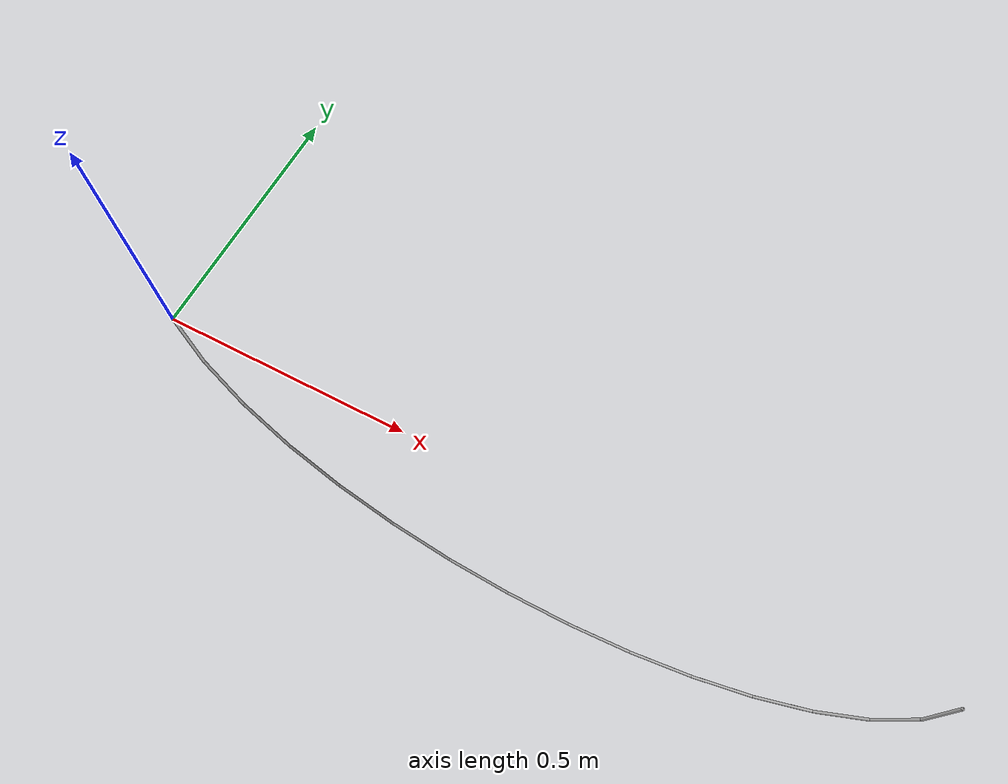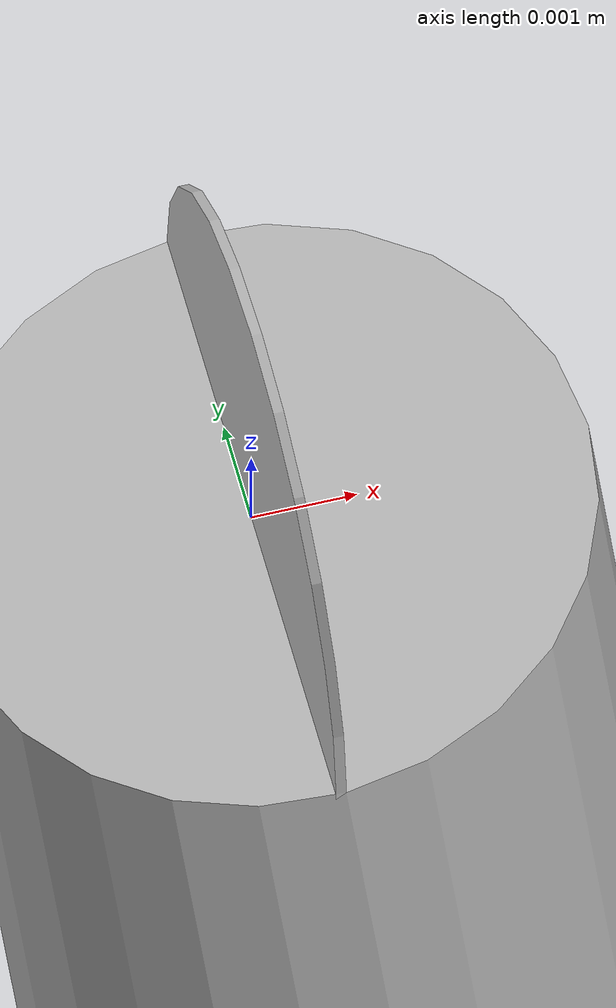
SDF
<sdf version='1.10'>
  <model name='tether_2m'>
    <link name='element_first'>
      <inertial>
        <pose>5.0000000000000002e-05 0 0 0 1.5707963267948966 0</pose>
        <mass>0.0001</mass>
        <inertia>
          <ixx>2.4033333333333338e-10</ixx>
          <ixy>0</ixy>
          <ixz>0</ixz>
          <iyy>2.4033333333333338e-10</iyy>
          <iyz>0</iyz>
          <izz>4.8050000000000005e-10</izz>
        </inertia>
      </inertial>
      <visual name='element_first_visual'>
        <pose>5.0000000000000002e-05 0 0 0 1.5707963267948966 0</pose>
        <geometry>
          <cylinder>
            <length>0.0001</length>
            <radius>0.0030999999999999999</radius>
          </cylinder>
        </geometry>
      </visual>
    </link>
    <joint name='joint_0_to_1' type='universal'>
      <pose relative_to='element_first'>0.0001 0 0 0 1.4660765716752395 0</pose>
      <parent>element_first</parent>
      <child>element_1</child>

      <axis>
        <xyz>0 1 0</xyz>
        <limit>
          <lower>-inf</lower>
          <upper>inf</upper>
        </limit>
        <dynamics>
          <damping>0.002</damping>
          <friction>0.0</friction>
          <spring_reference> 0 </spring_reference>
          <spring_stiffness> 0 </spring_stiffness>
        </dynamics>
    </axis>
      <axis2>
        <xyz>0 0 1</xyz>
        <limit>
          <lower>-inf</lower>
          <upper>inf</upper>
        </limit>
        <dynamics>
          <damping>0.002</damping>
          <friction>0.0</friction>
          <spring_reference> 0 </spring_reference>
          <spring_stiffness> 0 </spring_stiffness>
        </dynamics>
      </axis2>
    </joint>
    <link name='element_1'>
      <pose relative_to='joint_0_to_1'>0 0 0 0 0 0</pose>
      <inertial>
        <pose>0.080699999999999994 0 0 0 1.5707963267948966 0</pose>
        <mass>0.0013333333333333331</mass>
        <inertia>
          <ixx>2.8976433333333328e-06</ixx>
          <ixy>0</ixy>
          <ixz>0</ixz>
          <iyy>2.8976433333333328e-06</iyy>
          <iyz>0</iyz>
          <izz>6.4066666666666656e-09</izz>
        </inertia>
      </inertial>
      <visual name='element_1_visual'>
        <pose>0.080699999999999994 0 0 0 1.5707963267948966 0</pose>
        <geometry>
          <cylinder>
            <length>0.16139999999999999</length>
            <radius>0.0030999999999999999</radius>
          </cylinder>
        </geometry>
      </visual>
    </link>
    <joint name='joint_1_to_2' type='universal'>
      <pose relative_to='element_1'>0.16139999999999999 0 0 0 -0.20943951023931962 0</pose>
      <parent>element_1</parent>
      <child>element_2</child>

      <axis>
        <xyz>0 1 0</xyz>
        <limit>
          <lower>-inf</lower>
          <upper>inf</upper>
        </limit>
        <dynamics>
          <damping>0.002</damping>
          <friction>0</friction>
          <spring_reference>-0.10833078115</spring_reference>
          <spring_stiffness>0</spring_stiffness>
        </dynamics>
    </axis>
      <axis2>
        <xyz>0 0 1</xyz>
        <limit>
          <lower>-inf</lower>
          <upper>inf</upper>
        </limit>
        <dynamics>
          <damping>0.002</damping>
          <friction>0</friction>
          <spring_reference>0</spring_reference>
          <spring_stiffness>0</spring_stiffness>
        </dynamics>
      </axis2>
    </joint>
    <link name='element_2'>
      <pose relative_to='joint_1_to_2'>0 0 0 0 0 0</pose>
      <inertial>
        <pose>0.080699999999999994 0 0 0 1.5707963267948966 0</pose>
        <mass>0.0013333333333333331</mass>
        <inertia>
          <ixx>2.8976433333333328e-06</ixx>
          <ixy>0</ixy>
          <ixz>0</ixz>
          <iyy>2.8976433333333328e-06</iyy>
          <iyz>0</iyz>
          <izz>6.4066666666666656e-09</izz>
        </inertia>
      </inertial>
      <visual name='element_2_visual'>
        <pose>0.080699999999999994 0 0 0 1.5707963267948966 0</pose>
        <geometry>
          <cylinder>
            <length>0.16139999999999999</length>
            <radius>0.0030999999999999999</radius>
          </cylinder>
        </geometry>
      </visual>
    </link>
    <joint name='joint_2_to_3' type='universal'>
      <pose relative_to='element_2'>0.16139999999999999 0 0 0 -0.20943951023931962 0</pose>
      <parent>element_2</parent>
      <child>element_3</child>

      <axis>
        <xyz>0 1 0</xyz>
        <limit>
          <lower>-inf</lower>
          <upper>inf</upper>
        </limit>
        <dynamics>
          <damping>0.002</damping>
          <friction>0.0</friction>
          <spring_reference>-0.10833078115</spring_reference>
          <spring_stiffness>0</spring_stiffness>
        </dynamics>
    </axis>
      <axis2>
        <xyz>0 0 1</xyz>
        <limit>
          <lower>-inf</lower>
          <upper>inf</upper>
        </limit>
        <dynamics>
          <damping>0.002</damping>
          <friction>0.0</friction>
          <spring_reference>0</spring_reference>
          <spring_stiffness>0</spring_stiffness>
        </dynamics>
      </axis2>
    </joint>
    <link name='element_3'>
      <pose relative_to='joint_2_to_3'>0 0 0 0 0 0</pose>
      <inertial>
        <pose>0.080699999999999994 0 0 0 1.5707963267948966 0</pose>
        <mass>0.0013333333333333331</mass>
        <inertia>
          <ixx>2.8976433333333328e-06</ixx>
          <ixy>0</ixy>
          <ixz>0</ixz>
          <iyy>2.8976433333333328e-06</iyy>
          <iyz>0</iyz>
          <izz>6.4066666666666656e-09</izz>
        </inertia>
      </inertial>
      <visual name='element_3_visual'>
        <pose>0.080699999999999994 0 0 0 1.5707963267948966 0</pose>
        <geometry>
          <cylinder>
            <length>0.16139999999999999</length>
            <radius>0.0030999999999999999</radius>
          </cylinder>
        </geometry>
      </visual>
    </link>
    <joint name='joint_3_to_4' type='universal'>
      <pose relative_to='element_3'>0.16139999999999999 0 0 0 -0.20943951023931962 0</pose>
      <parent>element_3</parent>
      <child>element_4</child>

      <axis>
        <xyz>0 1 0</xyz>
        <limit>
          <lower>-inf</lower>
          <upper>inf</upper>
        </limit>
        <dynamics>
          <damping>0.002</damping>
          <friction>0</friction>
          <spring_reference>-0.10833078115</spring_reference>
          <spring_stiffness>0</spring_stiffness>
        </dynamics>
    </axis>
      <axis2>
        <xyz>0 0 1</xyz>
        <limit>
          <lower>-inf</lower>
          <upper>inf</upper>
        </limit>
        <dynamics>
          <damping>0.002</damping>
          <friction>0</friction>
          <spring_reference>0</spring_reference>
          <spring_stiffness>0</spring_stiffness>
        </dynamics>
      </axis2>
    </joint>
    <link name='element_4'>
      <pose relative_to='joint_3_to_4'>0 0 0 0 0 0</pose>
      <inertial>
        <pose>0.080699999999999994 0 0 0 1.5707963267948966 0</pose>
        <mass>0.0013333333333333331</mass>
        <inertia>
          <ixx>2.8976433333333328e-06</ixx>
          <ixy>0</ixy>
          <ixz>0</ixz>
          <iyy>2.8976433333333328e-06</iyy>
          <iyz>0</iyz>
          <izz>6.4066666666666656e-09</izz>
        </inertia>
      </inertial>
      <visual name='element_4_visual'>
        <pose>0.080699999999999994 0 0 0 1.5707963267948966 0</pose>
        <geometry>
          <cylinder>
            <length>0.16139999999999999</length>
            <radius>0.0030999999999999999</radius>
          </cylinder>
        </geometry>
      </visual>
    </link>
    <joint name='joint_4_to_5' type='universal'>
      <pose relative_to='element_4'>0.16139999999999999 0 0 0 -0.20943951023931962 0</pose>
      <parent>element_4</parent>
      <child>element_5</child>

      <axis>
        <xyz>0 1 0</xyz>
        <limit>
          <lower>-inf</lower>
          <upper>inf</upper>
        </limit>
        <dynamics>
          <damping>0.002</damping>
          <friction>0.0</friction>
          <spring_reference>-0.10833078115</spring_reference>
          <spring_stiffness>0</spring_stiffness>
        </dynamics>
    </axis>
      <axis2>
        <xyz>0 0 1</xyz>
        <limit>
          <lower>-inf</lower>
          <upper>inf</upper>
        </limit>
        <dynamics>
          <damping>0.002</damping>
          <friction>0.0</friction>
          <spring_reference>0</spring_reference>
          <spring_stiffness>0</spring_stiffness>
        </dynamics>
      </axis2>
    </joint>
    <link name='element_5'>
      <pose relative_to='joint_4_to_5'>0 0 0 0 0 0</pose>
      <inertial>
        <pose>0.080699999999999994 0 0 0 1.5707963267948966 0</pose>
        <mass>0.0013333333333333331</mass>
        <inertia>
          <ixx>2.8976433333333328e-06</ixx>
          <ixy>0</ixy>
          <ixz>0</ixz>
          <iyy>2.8976433333333328e-06</iyy>
          <iyz>0</iyz>
          <izz>6.4066666666666656e-09</izz>
        </inertia>
      </inertial>
      <visual name='element_5_visual'>
        <pose>0.080699999999999994 0 0 0 1.5707963267948966 0</pose>
        <geometry>
          <cylinder>
            <length>0.16139999999999999</length>
            <radius>0.0030999999999999999</radius>
          </cylinder>
        </geometry>
      </visual>
    </link>
    <joint name='joint_5_to_6' type='universal'>
      <pose relative_to='element_5'>0.16139999999999999 0 0 0 -0.20943951023931962 0</pose>
      <parent>element_5</parent>
      <child>element_6</child>

      <axis>
        <xyz>0 1 0</xyz>
        <limit>
          <lower>-inf</lower>
          <upper>inf</upper>
        </limit>
        <dynamics>
          <damping>0.002</damping>
          <friction>0</friction>
          <spring_reference>-0.10833078115</spring_reference>
          <spring_stiffness>0</spring_stiffness>
        </dynamics>
    </axis>
      <axis2>
        <xyz>0 0 1</xyz>
        <limit>
          <lower>-inf</lower>
          <upper>inf</upper>
        </limit>
        <dynamics>
          <damping>0.002</damping>
          <friction>0</friction>
          <spring_reference>0</spring_reference>
          <spring_stiffness>0</spring_stiffness>
        </dynamics>
      </axis2>
    </joint>
    <link name='element_6'>
      <pose relative_to='joint_5_to_6'>0 0 0 0 0 0</pose>
      <inertial>
        <pose>0.080699999999999994 0 0 0 1.5707963267948966 0</pose>
        <mass>0.0013333333333333331</mass>
        <inertia>
          <ixx>2.8976433333333328e-06</ixx>
          <ixy>0</ixy>
          <ixz>0</ixz>
          <iyy>2.8976433333333328e-06</iyy>
          <iyz>0</iyz>
          <izz>6.4066666666666656e-09</izz>
        </inertia>
      </inertial>
      <visual name='element_6_visual'>
        <pose>0.080699999999999994 0 0 0 1.5707963267948966 0</pose>
        <geometry>
          <cylinder>
            <length>0.16139999999999999</length>
            <radius>0.0030999999999999999</radius>
          </cylinder>
        </geometry>
      </visual>
    </link>
    <joint name='joint_6_to_7' type='universal'>
      <pose relative_to='element_6'>0.16139999999999999 0 0 0 -0.20943951023931962 0</pose>
      <parent>element_6</parent>
      <child>element_7</child>

      <axis>
        <xyz>0 1 0</xyz>
        <limit>
          <lower>-inf</lower>
          <upper>inf</upper>
        </limit>
        <dynamics>
          <damping>0.002</damping>
          <friction>0.0</friction>
          <spring_reference>-0.10833078115</spring_reference>
          <spring_stiffness>0</spring_stiffness>
        </dynamics>
    </axis>
      <axis2>
        <xyz>0 0 1</xyz>
        <limit>
          <lower>-inf</lower>
          <upper>inf</upper>
        </limit>
        <dynamics>
          <damping>0.002</damping>
          <friction>0.0</friction>
          <spring_reference>0</spring_reference>
          <spring_stiffness>0</spring_stiffness>
        </dynamics>
      </axis2>
    </joint>
    <link name='element_7'>
      <pose relative_to='joint_6_to_7'>0 0 0 0 0 0</pose>
      <inertial>
        <pose>0.080699999999999994 0 0 0 1.5707963267948966 0</pose>
        <mass>0.0013333333333333331</mass>
        <inertia>
          <ixx>2.8976433333333328e-06</ixx>
          <ixy>0</ixy>
          <ixz>0</ixz>
          <iyy>2.8976433333333328e-06</iyy>
          <iyz>0</iyz>
          <izz>6.4066666666666656e-09</izz>
        </inertia>
      </inertial>
      <visual name='element_7_visual'>
        <pose>0.080699999999999994 0 0 0 1.5707963267948966 0</pose>
        <geometry>
          <cylinder>
            <length>0.16139999999999999</length>
            <radius>0.0030999999999999999</radius>
          </cylinder>
        </geometry>
      </visual>
    </link>
    <joint name='joint_7_to_8' type='universal'>
      <pose relative_to='element_7'>0.16139999999999999 0 0 0 -0.20943951023931962 0</pose>
      <parent>element_7</parent>
      <child>element_8</child>

      <axis>
        <xyz>0 1 0</xyz>
        <limit>
          <lower>-inf</lower>
          <upper>inf</upper>
        </limit>
        <dynamics>
          <damping>0.002</damping>
          <friction>0</friction>
          <spring_reference>-0.10833078115</spring_reference>
          <spring_stiffness>0</spring_stiffness>
        </dynamics>
    </axis>
      <axis2>
        <xyz>0 0 1</xyz>
        <limit>
          <lower>-inf</lower>
          <upper>inf</upper>
        </limit>
        <dynamics>
          <damping>0.002</damping>
          <friction>0</friction>
          <spring_reference>0</spring_reference>
          <spring_stiffness>0</spring_stiffness>
        </dynamics>
      </axis2>
    </joint>
    <link name='element_8'>
      <pose relative_to='joint_7_to_8'>0 0 0 0 0 0</pose>
      <inertial>
        <pose>0.080699999999999994 0 0 0 1.5707963267948966 0</pose>
        <mass>0.0013333333333333331</mass>
        <inertia>
          <ixx>2.8976433333333328e-06</ixx>
          <ixy>0</ixy>
          <ixz>0</ixz>
          <iyy>2.8976433333333328e-06</iyy>
          <iyz>0</iyz>
          <izz>6.4066666666666656e-09</izz>
        </inertia>
      </inertial>
      <visual name='element_8_visual'>
        <pose>0.080699999999999994 0 0 0 1.5707963267948966 0</pose>
        <geometry>
          <cylinder>
            <length>0.16139999999999999</length>
            <radius>0.0030999999999999999</radius>
          </cylinder>
        </geometry>
      </visual>
    </link>
    <joint name='joint_8_to_9' type='universal'>
      <pose relative_to='element_8'>0.16139999999999999 0 0 0 -0.20943951023931962 0</pose>
      <parent>element_8</parent>
      <child>element_9</child>

      <axis>
        <xyz>0 1 0</xyz>
        <limit>
          <lower>-inf</lower>
          <upper>inf</upper>
        </limit>
        <dynamics>
          <damping>0.002</damping>
          <friction>0.0</friction>
          <spring_reference>-0.10833078115</spring_reference>
          <spring_stiffness>0</spring_stiffness>
        </dynamics>
    </axis>
      <axis2>
        <xyz>0 0 1</xyz>
        <limit>
          <lower>-inf</lower>
          <upper>inf</upper>
        </limit>
        <dynamics>
          <damping>0.002</damping>
          <friction>0.0</friction>
          <spring_reference>0</spring_reference>
          <spring_stiffness>0</spring_stiffness>
        </dynamics>
      </axis2>
    </joint>
    <link name='element_9'>
      <pose relative_to='joint_8_to_9'>0 0 0 0 0 0</pose>
      <inertial>
        <pose>0.080699999999999994 0 0 0 1.5707963267948966 0</pose>
        <mass>0.0013333333333333331</mass>
        <inertia>
          <ixx>2.8976433333333328e-06</ixx>
          <ixy>0</ixy>
          <ixz>0</ixz>
          <iyy>2.8976433333333328e-06</iyy>
          <iyz>0</iyz>
          <izz>6.4066666666666656e-09</izz>
        </inertia>
      </inertial>
      <visual name='element_9_visual'>
        <pose>0.080699999999999994 0 0 0 1.5707963267948966 0</pose>
        <geometry>
          <cylinder>
            <length>0.16139999999999999</length>
            <radius>0.0030999999999999999</radius>
          </cylinder>
        </geometry>
      </visual>
    </link>
    <joint name='joint_9_to_10' type='universal'>
      <pose relative_to='element_9'>0.16139999999999999 0 0 0 -0.20943951023931962 0</pose>
      <parent>element_9</parent>
      <child>element_10</child>

      <axis>
        <xyz>0 1 0</xyz>
        <limit>
          <lower>-inf</lower>
          <upper>inf</upper>
        </limit>
        <dynamics>
          <damping>0.002</damping>
          <friction>0</friction>
          <spring_reference>-0.10833078115</spring_reference>
          <spring_stiffness>0</spring_stiffness>
        </dynamics>
    </axis>
      <axis2>
        <xyz>0 0 1</xyz>
        <limit>
          <lower>-inf</lower>
          <upper>inf</upper>
        </limit>
        <dynamics>
          <damping>0.002</damping>
          <friction>0</friction>
          <spring_reference>0</spring_reference>
          <spring_stiffness>0</spring_stiffness>
        </dynamics>
      </axis2>
    </joint>
    <link name='element_10'>
      <pose relative_to='joint_9_to_10'>0 0 0 0 0 0</pose>
      <inertial>
        <pose>0.080699999999999994 0 0 0 1.5707963267948966 0</pose>
        <mass>0.0013333333333333331</mass>
        <inertia>
          <ixx>2.8976433333333328e-06</ixx>
          <ixy>0</ixy>
          <ixz>0</ixz>
          <iyy>2.8976433333333328e-06</iyy>
          <iyz>0</iyz>
          <izz>6.4066666666666656e-09</izz>
        </inertia>
      </inertial>
      <visual name='element_10_visual'>
        <pose>0.080699999999999994 0 0 0 1.5707963267948966 0</pose>
        <geometry>
          <cylinder>
            <length>0.16139999999999999</length>
            <radius>0.0030999999999999999</radius>
          </cylinder>
        </geometry>
      </visual>
    </link>
    <joint name='joint_10_to_11' type='universal'>
      <pose relative_to='element_10'>0.16139999999999999 0 0 0 -0.20943951023931962 0</pose>
      <parent>element_10</parent>
      <child>element_11</child>

      <axis>
        <xyz>0 1 0</xyz>
        <limit>
          <lower>-inf</lower>
          <upper>inf</upper>
        </limit>
        <dynamics>
          <damping>0.002</damping>
          <friction>0.0</friction>
          <spring_reference>-0.10833078115</spring_reference>
          <spring_stiffness>0</spring_stiffness>
        </dynamics>
    </axis>
      <axis2>
        <xyz>0 0 1</xyz>
        <limit>
          <lower>-inf</lower>
          <upper>inf</upper>
        </limit>
        <dynamics>
          <damping>0.002</damping>
          <friction>0.0</friction>
          <spring_reference>0</spring_reference>
          <spring_stiffness>0</spring_stiffness>
        </dynamics>
      </axis2>
    </joint>
    <link name='element_11'>
      <pose relative_to='joint_10_to_11'>0 0 0 0 0 0</pose>
      <inertial>
        <pose>0.080699999999999994 0 0 0 1.5707963267948966 0</pose>
        <mass>0.0013333333333333331</mass>
        <inertia>
          <ixx>2.8976433333333328e-06</ixx>
          <ixy>0</ixy>
          <ixz>0</ixz>
          <iyy>2.8976433333333328e-06</iyy>
          <iyz>0</iyz>
          <izz>6.4066666666666656e-09</izz>
        </inertia>
      </inertial>
      <visual name='element_11_visual'>
        <pose>0.080699999999999994 0 0 0 1.5707963267948966 0</pose>
        <geometry>
          <cylinder>
            <length>0.16139999999999999</length>
            <radius>0.0030999999999999999</radius>
          </cylinder>
        </geometry>
      </visual>
    </link>
    <joint name='joint_11_to_12' type='universal'>
      <pose relative_to='element_11'>0.16139999999999999 0 0 0 -0.20943951023931962 0</pose>
      <parent>element_11</parent>
      <child>element_12</child>

      <axis>
        <xyz>0 1 0</xyz>
        <limit>
          <lower>-inf</lower>
          <upper>inf</upper>
        </limit>
        <dynamics>
          <damping>0.002</damping>
          <friction>0</friction>
          <spring_reference>-0.10833078115</spring_reference>
          <spring_stiffness>0</spring_stiffness>
        </dynamics>
    </axis>
      <axis2>
        <xyz>0 0 1</xyz>
        <limit>
          <lower>-inf</lower>
          <upper>inf</upper>
        </limit>
        <dynamics>
          <damping>0.002</damping>
          <friction>0</friction>
          <spring_reference>0</spring_reference>
          <spring_stiffness>0</spring_stiffness>
        </dynamics>
      </axis2>
    </joint>
    <link name='element_12'>
      <pose relative_to='joint_11_to_12'>0 0 0 0 0 0</pose>
      <inertial>
        <pose>0.080699999999999994 0 0 0 1.5707963267948966 0</pose>
        <mass>0.0013333333333333331</mass>
        <inertia>
          <ixx>2.8976433333333328e-06</ixx>
          <ixy>0</ixy>
          <ixz>0</ixz>
          <iyy>2.8976433333333328e-06</iyy>
          <iyz>0</iyz>
          <izz>6.4066666666666656e-09</izz>
        </inertia>
      </inertial>
      <visual name='element_12_visual'>
        <pose>0.080699999999999994 0 0 0 1.5707963267948966 0</pose>
        <geometry>
          <cylinder>
            <length>0.16139999999999999</length>
            <radius>0.0030999999999999999</radius>
          </cylinder>
        </geometry>
      </visual>
    </link>
    <joint name='joint_12_to_13' type='universal'>
      <pose relative_to='element_12'>0.16139999999999999 0 0 0 -0.20943951023931962 0</pose>
      <parent>element_12</parent>
      <child>element_13</child>

      <axis>
        <xyz>0 1 0</xyz>
        <limit>
          <lower>-inf</lower>
          <upper>inf</upper>
        </limit>
        <dynamics>
          <damping>0.002</damping>
          <friction>0.0</friction>
          <spring_reference>-0.10833078115</spring_reference>
          <spring_stiffness>0</spring_stiffness>
        </dynamics>
    </axis>
      <axis2>
        <xyz>0 0 1</xyz>
        <limit>
          <lower>-inf</lower>
          <upper>inf</upper>
        </limit>
        <dynamics>
          <damping>0.002</damping>
          <friction>0.0</friction>
          <spring_reference>0</spring_reference>
          <spring_stiffness>0</spring_stiffness>
        </dynamics>
      </axis2>
    </joint>
    <link name='element_13'>
      <pose relative_to='joint_12_to_13'>0 0 0 0 0 0</pose>
      <inertial>
        <pose>0.080699999999999994 0 0 0 1.5707963267948966 0</pose>
        <mass>0.0013333333333333331</mass>
        <inertia>
          <ixx>2.8976433333333328e-06</ixx>
          <ixy>0</ixy>
          <ixz>0</ixz>
          <iyy>2.8976433333333328e-06</iyy>
          <iyz>0</iyz>
          <izz>6.4066666666666656e-09</izz>
        </inertia>
      </inertial>
      <visual name='element_13_visual'>
        <pose>0.080699999999999994 0 0 0 1.5707963267948966 0</pose>
        <geometry>
          <cylinder>
            <length>0.16139999999999999</length>
            <radius>0.0030999999999999999</radius>
          </cylinder>
        </geometry>
      </visual>
    </link>
    <joint name='joint_13_to_14' type='universal'>
      <pose relative_to='element_13'>0.16139999999999999 0 0 0 -0.20943951023931962 0</pose>
      <parent>element_13</parent>
      <child>element_14</child>

      <axis>
        <xyz>0 1 0</xyz>
        <limit>
          <lower>-inf</lower>
          <upper>inf</upper>
        </limit>
        <dynamics>
          <damping>0.002</damping>
          <friction>0</friction>
          <spring_reference>-0.10833078115</spring_reference>
          <spring_stiffness>0</spring_stiffness>
        </dynamics>
    </axis>
      <axis2>
        <xyz>0 0 1</xyz>
        <limit>
          <lower>-inf</lower>
          <upper>inf</upper>
        </limit>
        <dynamics>
          <damping>0.002</damping>
          <friction>0</friction>
          <spring_reference>0</spring_reference>
          <spring_stiffness>0</spring_stiffness>
        </dynamics>
      </axis2>
    </joint>
    <link name='element_14'>
      <pose relative_to='joint_13_to_14'>0 0 0 0 0 0</pose>
      <inertial>
        <pose>0.080699999999999994 0 0 0 1.5707963267948966 0</pose>
        <mass>0.0013333333333333331</mass>
        <inertia>
          <ixx>2.8976433333333328e-06</ixx>
          <ixy>0</ixy>
          <ixz>0</ixz>
          <iyy>2.8976433333333328e-06</iyy>
          <iyz>0</iyz>
          <izz>6.4066666666666656e-09</izz>
        </inertia>
      </inertial>
      <visual name='element_14_visual'>
        <pose>0.080699999999999994 0 0 0 1.5707963267948966 0</pose>
        <geometry>
          <cylinder>
            <length>0.16139999999999999</length>
            <radius>0.0030999999999999999</radius>
          </cylinder>
        </geometry>
      </visual>
    </link>
    <joint name='joint_14_to_15' type='universal'>
      <pose relative_to='element_14'>0.16139999999999999 0 0 0 -0.20943951023931962 0</pose>
      <parent>element_14</parent>
      <child>element_15</child>

      <axis>
        <xyz>0 1 0</xyz>
        <limit>
          <lower>-inf</lower>
          <upper>inf</upper>
        </limit>
        <dynamics>
          <damping>0.002</damping>
          <friction>0.0</friction>
          <spring_reference>-0.10833078115</spring_reference>
          <spring_stiffness>0</spring_stiffness>
        </dynamics>
    </axis>
      <axis2>
        <xyz>0 0 1</xyz>
        <limit>
          <lower>-inf</lower>
          <upper>inf</upper>
        </limit>
        <dynamics>
          <damping>0.002</damping>
          <friction>0.0</friction>
          <spring_reference>0</spring_reference>
          <spring_stiffness>0</spring_stiffness>
        </dynamics>
      </axis2>
    </joint>
    <link name='element_15'>
      <pose relative_to='joint_14_to_15'>0 0 0 0 0 0</pose>
      <inertial>
        <pose>0.080699999999999994 0 0 0 1.5707963267948966 0</pose>
        <mass>0.0013333333333333331</mass>
        <inertia>
          <ixx>2.8976433333333328e-06</ixx>
          <ixy>0</ixy>
          <ixz>0</ixz>
          <iyy>2.8976433333333328e-06</iyy>
          <iyz>0</iyz>
          <izz>6.4066666666666656e-09</izz>
        </inertia>
      </inertial>
      <visual name='element_15_visual'>
        <pose>0.080699999999999994 0 0 0 1.5707963267948966 0</pose>
        <geometry>
          <cylinder>
            <length>0.16139999999999999</length>
            <radius>0.0030999999999999999</radius>
          </cylinder>
        </geometry>
      </visual>
    </link>
    <joint name='joint_15_to_16' type='universal'>
      <pose relative_to='element_15'>0.16139999999999999 0 0 0 1.4660765716752395 0</pose>
      <parent>element_15</parent>
      <child>element_last</child>

      <axis>
        <xyz>0 1 0</xyz>
        <limit>
          <lower>-inf</lower>
          <upper>inf</upper>
        </limit>
        <dynamics>
          <damping>0.002</damping>
          <friction>0</friction>
          <spring_reference> 0 </spring_reference>
          <spring_stiffness> 0 </spring_stiffness>
        </dynamics>
    </axis>
      <axis2>
        <xyz>0 0 1</xyz>
        <limit>
          <lower>-inf</lower>
          <upper>inf</upper>
        </limit>
        <dynamics>
          <damping>0.002</damping>
          <friction>0</friction>
          <spring_reference> 0 </spring_reference>
          <spring_stiffness> 0 </spring_stiffness>
        </dynamics>
      </axis2>
    </joint>
    <link name='element_last'>
      <pose relative_to='joint_15_to_16'>0 0 0 0 0 0</pose>
      <inertial>
        <pose>5.0000000000000002e-05 0 0 0 1.5707963267948966 0</pose>
        <mass>0.0001</mass>
        <inertia>
          <ixx>2.4033333333333338e-10</ixx>
          <ixy>0</ixy>
          <ixz>0</ixz>
          <iyy>2.4033333333333338e-10</iyy>
          <iyz>0</iyz>
          <izz>4.8050000000000005e-10</izz>
        </inertia>
      </inertial>
      <visual name='element_last_visual'>
        <pose>5.0000000000000002e-05 0 0 0 1.5707963267948966 0</pose>
        <geometry>
          <cylinder>
            <length>0.0001</length>
            <radius>0.0030999999999999999</radius>
          </cylinder>
        </geometry>
      </visual>
    </link>
  </model>
</sdf>
